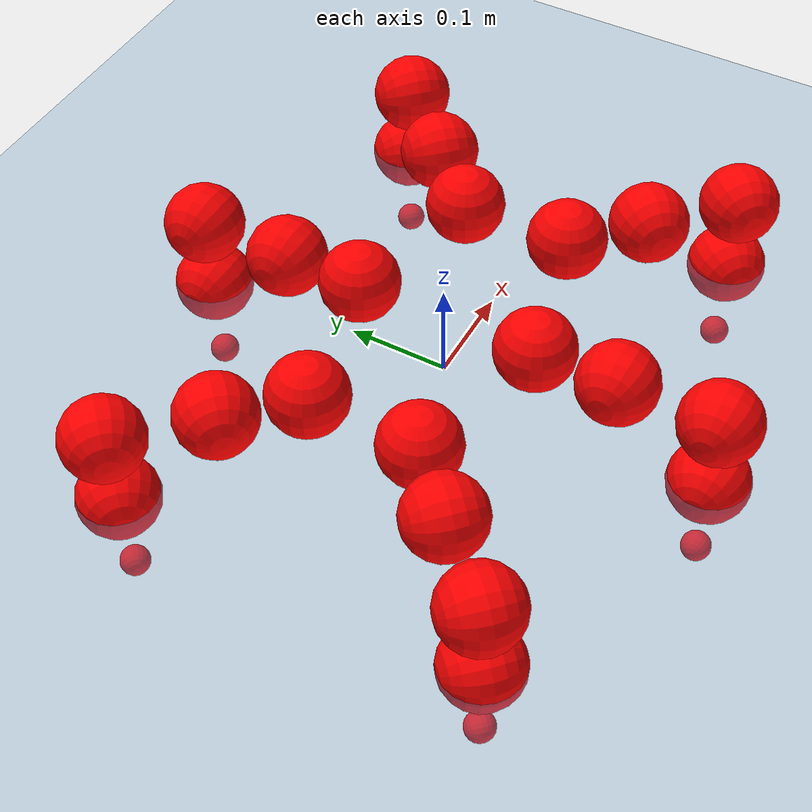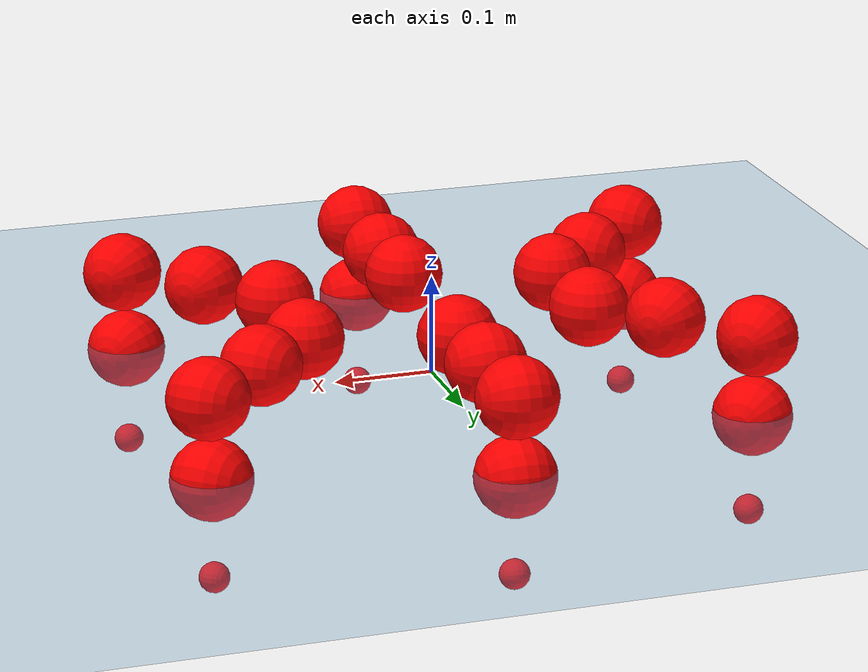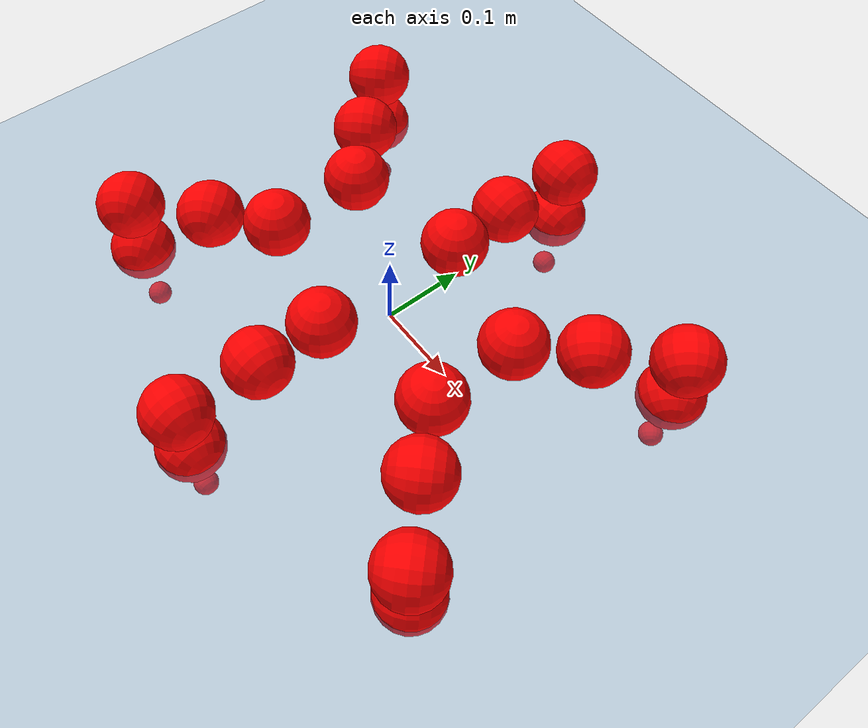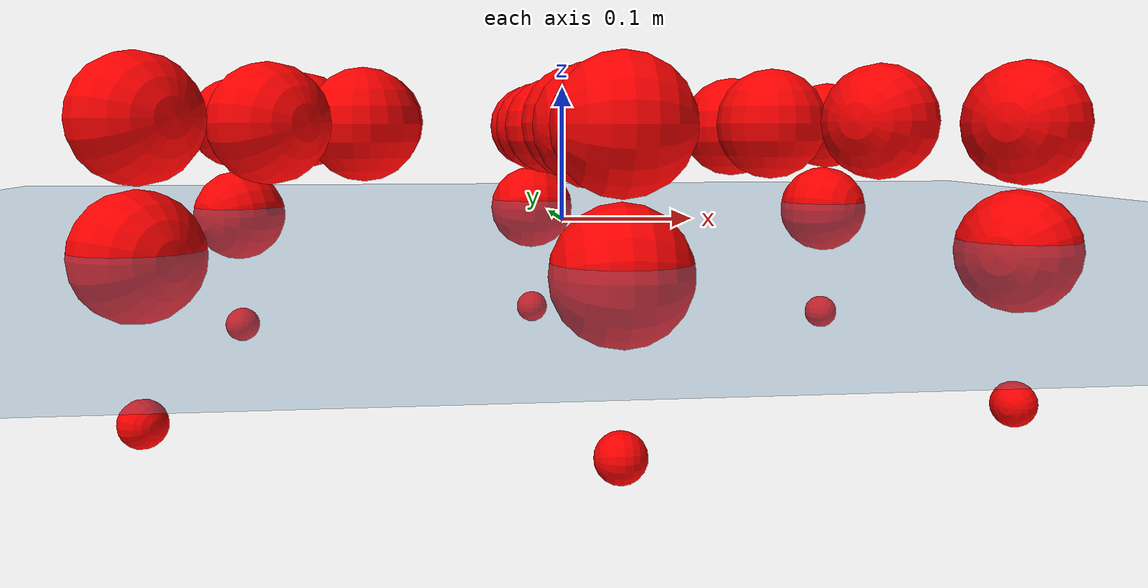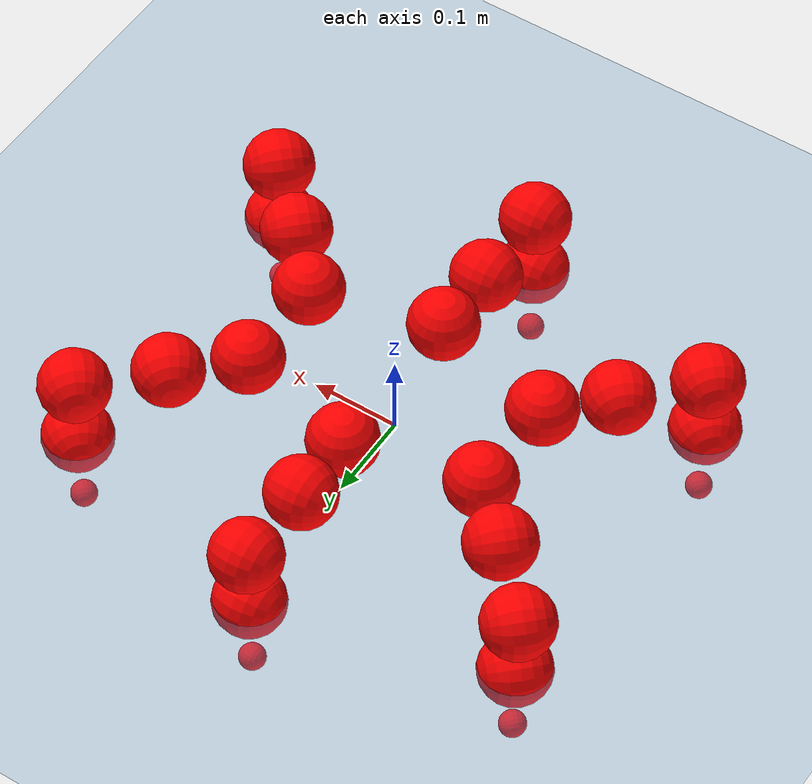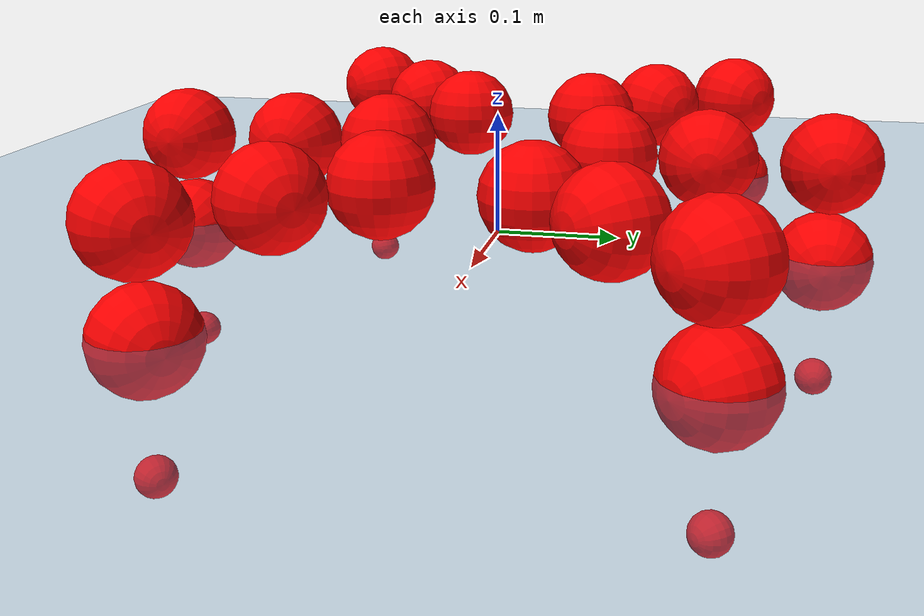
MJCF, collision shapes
<mujoco model="Golem">
  <compiler angle="radian" assetdir="assets" balanceinertia="true" inertiafromgeom="false"/>

  <option timestep="0.005" density="1.2" viscosity="2e-05"/>

  <size nkey="1"/>

  <visual>
    <quality shadowsize="8192"/>
    <map shadowclip="0.5"/>
  </visual>

  <default>
    <default class="/">
      <joint armature="0.01" damping="0.01" frictionloss="0.01"/>
      <geom contype="0" conaffinity="0" group="1" solref="-1000 -80"/>
      <site size="0.01 0.005 0.005" group="5"/>
      <general forcelimited="true" biastype="affine" gainprm="25" biasprm="0 -25 -0.5"/>
      <default class="visual">
        <geom type="mesh" group="2"/>
      </default>
      <default class="collision">
        <geom group="3"/>
      </default>
      <default class="foot">
        <geom size="0.01 0 0" condim="6" group="4" priority="1" solimp="0.015 1 0.01"/>
      </default>
      <default class="reward_collision_sphere">
        <geom group="5" rgba="1 0 0 1"/>
      </default>
    </default>
  </default>

  <asset>
    <texture type="skybox" colorspace="auto" name="//unnamed_texture_0" builtin="gradient" rgb1="0.95 0.95 0.95" rgb2="0.95 0.95 0.95" width="100" height="600"/>
    <texture type="2d" colorspace="auto" name="texplane" builtin="checker" rgb1="0.345 0.575 0.748" rgb2="0.345 0.575 0.748" markrgb="1 1 1" width="512" height="512"/>
    <material name="MatPlane" class="/" texture="texplane" texuniform="true" texrepeat="2 2" specular="0.9"/>
    <mesh name="body" class="/" file="body.stl" scale="0.001 0.001 0.001"/>
    <mesh name="coxa" class="/" file="coxa.stl" scale="0.001 0.001 0.001"/>
    <mesh name="femur" class="/" file="femur.stl" scale="0.001 0.001 0.001"/>
    <mesh name="tibia" class="/" file="tibia.stl" scale="0.001 0.001 0.001"/>
    <mesh name="tarsus" class="/" file="tarsus.stl" scale="0.001 0.001 0.001"/>
  </asset>

  <worldbody>
    <geom name="floor" class="/" size="100 100 0.125" type="plane" group="0" material="MatPlane"/>
    <light name="toplight_shadow" class="/" pos="0 0 5" dir="0.0990148 0.0990148 -0.990148" type="directional" ambient="0.04 0.04 0.04" diffuse="0.55 0.55 0.55" specular="0.12 0.12 0.12"/>
    <light name="toplight_fill" class="/" pos="0 0 5" dir="0.0990148 0.0990148 -0.990148" type="directional" castshadow="false" ambient="0.04 0.04 0.04" diffuse="0.3 0.3 0.3" specular="0.08 0.08 0.08"/>
    <body name="trunk" pos="-2.25137e-05 0.000383907 -0.00283984" quat="0.999999 -0.000928813 -0.000777629 -0.000423679">
      <inertial pos="0.00256902 -0.00250151 -0.000458233" quat="0.999973 0.0059157 -0.00413381 -0.00117398" mass="3.38751" diaginertia="0.00642717 0.00564765 0.0196473"/>
      <joint name="//unnamed_joint_0" type="free"/>
      <geom name="//unnamed_geom_1" class="/" pos="0 0 0.0732619" quat="1 0 0 0" type="mesh" rgba="0.9 0.9 0.9 1" mesh="body"/>
      <site name="imu" class="/" pos="0.115556 0.0122872 0.120249" size="0.00989364"/>
      <camera name="track" class="/" pos="0 -1.80694 0" quat="0.707107 0.707107 0 0" mode="trackcom"/>
      <camera name="ego_camera" class="/" pos="0.119588 0 0.114472" quat="-0.5 -0.5 0.5 0.5"/>
      <body name="coxa_RR" pos="-0.16474 -0.0754048 0.0751302" quat="0.382963 0.000339453 1.99266e-05 -0.923763">
        <inertial pos="0.002685 0.00141915 -0.00247797" quat="0.999936 3.62224e-06 -0.0071996 -0.00877106" mass="0.197029" diaginertia="0.00642614 0.00610598 0.0195975"/>
        <joint name="coxa_joint_RR" class="/" pos="0 0 0" axis="-0.000253257 -0.00376476 -0.999993" stiffness="0.00279759" range="-3.09477 3.11285" armature="0.00960775" damping="0" frictionloss="0.0108154"/>
        <geom name="//unnamed_geom_2" class="/" type="mesh" rgba="0.2 0.2 0.2 1" mesh="coxa"/>
        <geom name="//unnamed_geom_3" class="reward_collision_sphere" size="0.0395745" pos="-0.0275972 0 0"/>
        <body name="femur_RR" pos="0.0518788 -0.00180611 0.000774493" quat="0.499612 -0.499713 0.500009 0.500666">
          <inertial pos="0.000341612 0.00132103 0.00267154" quat="0.999899 0.000342967 0.00048885 0.0141646" mass="0.185896" diaginertia="0.00662978 0.00567576 0.0191892"/>
          <joint name="femur_joint_RR" class="/" pos="0 0 0" axis="-0.0042647 0.00092425 -0.99999" range="-3.11086 3.10961" armature="0.0110373" damping="0.011728" frictionloss="0.00995687"/>
          <geom name="//unnamed_geom_4" class="/" type="mesh" rgba="0.9 0.9 0.9 1" mesh="femur"/>
          <geom name="//unnamed_geom_5" class="reward_collision_sphere" size="0.0395745"/>
          <body name="tibia_RR" pos="-0.00279962 -0.0954718 0.00106419" quat="-0.000204412 1 9.46363e-05 6.4599e-05">
            <inertial pos="-0.000544301 0.00183259 -0.00025678" quat="1 9.18025e-05 -0.000483058 -2.18735e-05" mass="0.188315" diaginertia="0.00642751 0.00581714 0.0192207"/>
            <joint name="tibia_joint_RR" class="/" pos="0 0 0" axis="0.00882519 0.00583819 0.999944" range="-3.10439 3.14027" armature="0.00840783" damping="0.010857" frictionloss="0.0102821"/>
            <geom name="//unnamed_geom_6" class="/" type="mesh" rgba="0.2 0.2 0.2 1" mesh="tibia"/>
            <geom name="//unnamed_geom_7" class="reward_collision_sphere" size="0.0395745"/>
            <body name="tarsus_RR" pos="0.080279 0.0027289 -0.00140456" quat="0.999999 0.000608253 -0.00109045 0.000553615">
              <inertial pos="0.0579725 0.000669902 0.00284954" quat="0.499161 0.505741 0.489818 0.505116" mass="0.18883" diaginertia="0.00638322 0.00578248 0.0193209"/>
              <joint name="tarsus_joint_RR" class="/" pos="0 0 0" axis="0.00918591 -0.0117287 0.999889" range="-3.19422 3.15961" armature="0.00918933" damping="0.0173292" frictionloss="0.00950571"/>
              <geom name="//unnamed_geom_8" class="/" type="mesh" rgba="0.9 0.9 0.9 1" mesh="tarsus"/>
              <geom name="foot_1" class="foot" size="0.00900691" pos="0.103029 0 0" quat="0 -0.707107 0 0.707107"/>
              <geom name="//unnamed_geom_10" class="reward_collision_sphere" size="0.0395745"/>
              <geom name="//unnamed_geom_11" class="reward_collision_sphere" size="0.0148405" pos="0.0988898 0 0"/>
              <site name="foot_1" class="foot" pos="0.103029 0 0" quat="0 -0.707107 0 0.707107" size="0.00989364"/>
            </body>
          </body>
        </body>
      </body>
      <body name="coxa_RM" pos="0.000851176 -0.121433 0.0759972" quat="0.707065 1.45844e-05 9.72824e-06 -0.707149">
        <inertial pos="-0.000784184 -5.75064e-05 -0.00231227" quat="0.999983 0.00522457 -0.00258456 -0.00100867" mass="0.19003" diaginertia="0.00659684 0.0062312 0.0205968"/>
        <joint name="coxa_joint_RM" class="/" pos="0 0 0" axis="-0.00332367 -0.00441798 -0.999985" range="-3.13784 3.08473" armature="0.00942798" damping="0.0142508" frictionloss="0.0112977"/>
        <geom name="//unnamed_geom_12" class="/" type="mesh" rgba="0.2 0.2 0.2 1" mesh="coxa"/>
        <geom name="//unnamed_geom_13" class="reward_collision_sphere" size="0.0395745" pos="-0.0275972 0 0"/>
        <body name="femur_RM" pos="0.0539919 -0.000252574 -0.0017235" quat="0.500401 -0.499923 0.499948 0.499728">
          <inertial pos="-6.46644e-05 0.00270236 0.00039893" quat="0.999998 -0.00105817 -5.83622e-05 -0.00177803" mass="0.201392" diaginertia="0.00643023 0.00609052 0.0191409"/>
          <joint name="femur_joint_RM" class="/" pos="0 0 0" axis="0.000106168 0.000412439 -1" range="-3.08907 3.19051" armature="0.0113174" damping="0.0203192" frictionloss="0.0109533"/>
          <geom name="//unnamed_geom_14" class="/" type="mesh" rgba="0.9 0.9 0.9 1" mesh="femur"/>
          <geom name="//unnamed_geom_15" class="reward_collision_sphere" size="0.0395745"/>
          <body name="tibia_RM" pos="9.51556e-06 -0.0973604 -9.30022e-05" quat="-4.5178e-05 1 -0.000247797 -0.000506548">
            <inertial pos="-0.00108698 0.000103817 0.00271421" quat="1 2.78691e-05 -2.53477e-05 -1.32292e-05" mass="0.19779" diaginertia="0.0066238 0.00597081 0.0189855"/>
            <joint name="tibia_joint_RM" class="/" pos="0 0 0" axis="0.00416911 -0.00669594 0.999969" range="-3.09717 3.19587" armature="0.00907688" damping="0.0195287" frictionloss="0.010801"/>
            <geom name="//unnamed_geom_16" class="/" type="mesh" rgba="0.2 0.2 0.2 1" mesh="tibia"/>
            <geom name="//unnamed_geom_17" class="reward_collision_sphere" size="0.0395745"/>
            <body name="tarsus_RM" pos="0.0803067 -0.000709254 0.000750504" quat="0.999999 0.000555237 -0.000670006 -0.00112544">
              <inertial pos="0.0554004 -0.00134781 0.000395321" quat="0.499367 0.500119 0.50032 0.500194" mass="0.204938" diaginertia="0.00682514 0.00615964 0.020049"/>
              <joint name="tarsus_joint_RM" class="/" pos="0 0 0" axis="-0.00975721 -0.000129975 0.999952" range="-3.10267 3.13619" armature="0.00869919" damping="0.0159544" frictionloss="0.0101089"/>
              <geom name="//unnamed_geom_18" class="/" type="mesh" rgba="0.9 0.9 0.9 1" mesh="tarsus"/>
              <geom name="foot_2" class="foot" size="0.00883546" pos="0.103029 0 0" quat="0 -0.707107 0 0.707107"/>
              <geom name="//unnamed_geom_20" class="reward_collision_sphere" size="0.0395745"/>
              <geom name="//unnamed_geom_21" class="reward_collision_sphere" size="0.0148405" pos="0.0988898 0 0"/>
              <site name="foot_2" class="foot" pos="0.103029 0 0" quat="0 -0.707107 0 0.707107" size="0.00989364"/>
            </body>
          </body>
        </body>
      </body>
      <body name="coxa_RF" pos="0.165537 -0.0759278 0.0751108" quat="0.923907 -0.000711627 0.000467326 -0.382615">
        <inertial pos="-0.0016495 -0.00116935 -0.00253776" quat="0.9999 -0.000333788 -0.0107095 0.00925987" mass="0.191904" diaginertia="0.00659338 0.00600506 0.019947"/>
        <joint name="coxa_joint_RF" class="/" pos="0 0 0" axis="0.000362704 -0.00108163 -0.999999" range="-3.161 3.08152" armature="0.0100395" damping="0.0138498" frictionloss="0.0109179"/>
        <geom name="//unnamed_geom_22" class="/" type="mesh" rgba="0.2 0.2 0.2 1" mesh="coxa"/>
        <geom name="//unnamed_geom_23" class="reward_collision_sphere" size="0.0395745" pos="-0.0275972 0 0"/>
        <body name="femur_RF" pos="0.0558676 -0.00213267 0.00134428" quat="0.500615 -0.50079 0.499309 0.499284">
          <inertial pos="-0.000492927 -0.000311648 -0.000621907" quat="0.999908 -0.0107886 -0.00740419 -0.00351449" mass="0.193233" diaginertia="0.00634468 0.00586885 0.0189268"/>
          <joint name="femur_joint_RF" class="/" pos="0 0 0" axis="0.00535691 -0.00777385 -0.999955" stiffness="0.000609509" range="-3.09173 3.14597" armature="0.0094269" damping="0.00893544" frictionloss="0.00947053"/>
          <geom name="//unnamed_geom_24" class="/" type="mesh" rgba="0.9 0.9 0.9 1" mesh="femur"/>
          <geom name="//unnamed_geom_25" class="reward_collision_sphere" size="0.0395745"/>
          <body name="tibia_RF" pos="0.00127086 -0.095789 0.00157632" quat="0.000857991 1 1.20701e-05 0.000466734">
            <inertial pos="0.000321241 -0.00187787 -0.00257682" quat="0.999943 0.00378611 0.00431653 0.00903253" mass="0.19707" diaginertia="0.00637154 0.00594195 0.0197769"/>
            <joint name="tibia_joint_RF" class="/" pos="0 0 0" axis="0.0090833 -0.000779775 0.999958" stiffness="0.01544" range="-3.19085 3.12403" armature="0.00945574" damping="0.0280413" frictionloss="0.00850573"/>
            <geom name="//unnamed_geom_26" class="/" type="mesh" rgba="0.2 0.2 0.2 1" mesh="tibia"/>
            <geom name="//unnamed_geom_27" class="reward_collision_sphere" size="0.0395745"/>
            <body name="tarsus_RF" pos="0.0817157 -0.00274359 -0.000700542" quat="1 4.50857e-05 1.45028e-06 -7.56143e-07">
              <inertial pos="0.0564573 -0.000114456 0.00100065" quat="0.500114 0.492945 0.501935 0.504928" mass="0.185427" diaginertia="0.00619029 0.00565409 0.0189204"/>
              <joint name="tarsus_joint_RF" class="/" pos="0 0 0" axis="-0.000135318 -0.00693794 0.999976" stiffness="0.00435183" range="-3.12804 3.13413" armature="0.00932868" damping="0.00369365" frictionloss="0.011257"/>
              <geom name="//unnamed_geom_28" class="/" type="mesh" rgba="0.9 0.9 0.9 1" mesh="tarsus"/>
              <geom name="foot_3" class="foot" size="0.010584" pos="0.103029 0 0" quat="0 -0.707107 0 0.707107"/>
              <geom name="//unnamed_geom_30" class="reward_collision_sphere" size="0.0395745"/>
              <geom name="//unnamed_geom_31" class="reward_collision_sphere" size="0.0148405" pos="0.0988898 0 0"/>
              <site name="foot_3" class="foot" pos="0.103029 0 0" quat="0 -0.707107 0 0.707107" size="0.00989364"/>
            </body>
          </body>
        </body>
      </body>
      <body name="coxa_LR" pos="-0.163147 0.0772091 0.0768927" quat="0.382768 -0.000784389 0.000965776 0.923844">
        <inertial pos="-0.00244455 0.00233069 -0.00207963" quat="1 -0.000243599 0.000166622 -0.000232951" mass="0.1958" diaginertia="0.00646621 0.00579865 0.0195937"/>
        <joint name="coxa_joint_LR" class="/" pos="0 0 0" axis="-0.0156842 0.00258253 -0.999874" stiffness="0.0146061" range="-3.18712 3.17967" armature="0.0096049" damping="0.0164788" frictionloss="0.0112725"/>
        <geom name="//unnamed_geom_32" class="/" type="mesh" rgba="0.2 0.2 0.2 1" mesh="coxa"/>
        <geom name="//unnamed_geom_33" class="reward_collision_sphere" size="0.0395745" pos="-0.0275972 0 0"/>
        <body name="femur_LR" pos="0.0540978 0.00196586 0.00206426" quat="0.499922 -0.49969 0.500758 0.499629">
          <inertial pos="-0.00114372 0.00272173 0.00147235" quat="0.999967 0.00016237 -0.00589623 0.00564753" mass="0.186524" diaginertia="0.0067647 0.00587939 0.0188286"/>
          <joint name="femur_joint_LR" class="/" pos="0 0 0" axis="0.00316159 0.00100762 0.999994" range="-3.19034 3.17879" armature="0.0102912" damping="0.00782685" frictionloss="0.00976492"/>
          <geom name="//unnamed_geom_34" class="/" type="mesh" rgba="0.9 0.9 0.9 1" mesh="femur"/>
          <geom name="//unnamed_geom_35" class="reward_collision_sphere" size="0.0395745"/>
          <body name="tibia_LR" pos="0.00125299 -0.0981816 -0.00321717" quat="-0.000485926 1 0.00065411 -0.000326135">
            <inertial pos="-0.00262254 0.00172049 0.00276297" quat="0.999901 0.00153005 0.00162347 0.0139106" mass="0.199811" diaginertia="0.00662221 0.00623285 0.0192207"/>
            <joint name="tibia_joint_LR" class="/" pos="0 0 0" axis="-0.00699331 0.000626537 -0.999975" range="-3.10785 3.19428" armature="0.00850327" damping="0" frictionloss="0.00994298"/>
            <geom name="//unnamed_geom_36" class="/" type="mesh" rgba="0.2 0.2 0.2 1" mesh="tibia"/>
            <geom name="//unnamed_geom_37" class="reward_collision_sphere" size="0.0395745"/>
            <body name="tarsus_LR" pos="0.0818463 -0.00135517 0.000696081" quat="1 2.44022e-06 2.01085e-05 1.11012e-05">
              <inertial pos="0.0546851 -0.00214423 -6.53153e-05" quat="0.499687 0.500385 0.500189 0.499738" mass="0.185232" diaginertia="0.00646936 0.00596205 0.0199159"/>
              <joint name="tarsus_joint_LR" class="/" pos="0 0 0" axis="7.70633e-05 0.000359401 -1" stiffness="0.00675234" range="-3.14592 3.19599" armature="0.00974581" damping="0.00551499" frictionloss="0.0085083"/>
              <geom name="//unnamed_geom_38" class="/" type="mesh" rgba="0.9 0.9 0.9 1" mesh="tarsus"/>
              <geom name="foot_4" class="foot" size="0.0109937" pos="0.103029 0 0" quat="0.707107 0 -0.707107 0"/>
              <geom name="//unnamed_geom_40" class="reward_collision_sphere" size="0.0395745"/>
              <geom name="//unnamed_geom_41" class="reward_collision_sphere" size="0.0148405" pos="0.0988898 0 0"/>
              <site name="foot_4" class="foot" pos="0.103029 0 0" quat="0.707107 0 -0.707107 0" size="0.00989364"/>
            </body>
          </body>
        </body>
      </body>
      <body name="coxa_LM" pos="0.00261535 0.118429 0.073906" quat="0.707309 0.000129396 -1.96753e-05 0.706905">
        <inertial pos="0.000104847 -0.000480017 -0.00162888" quat="1 0.000192324 0.000612453 0.000383838" mass="0.190995" diaginertia="0.0068732 0.00607207 0.0198106"/>
        <joint name="coxa_joint_LM" class="/" pos="0 0 0" axis="-0.0138069 -0.00277712 -0.999901" range="-3.13642 3.15502" armature="0.0107259" damping="0.00586718" frictionloss="0.0098131"/>
        <geom name="//unnamed_geom_42" class="/" type="mesh" rgba="0.2 0.2 0.2 1" mesh="coxa"/>
        <geom name="//unnamed_geom_43" class="reward_collision_sphere" size="0.0395745" pos="-0.0275972 0 0"/>
        <body name="femur_LM" pos="0.0514097 0.00267252 -0.000601575" quat="0.500561 -0.499662 0.499559 0.500216">
          <inertial pos="-0.00268312 0.000504752 -0.00104594" quat="0.999907 0.00634001 -0.0119161 0.00218436" mass="0.187162" diaginertia="0.00639772 0.00577964 0.0189052"/>
          <joint name="femur_joint_LM" class="/" pos="0 0 0" axis="-0.00517632 0.0101308 0.999935" stiffness="0.00650339" range="-3.12645 3.11453" armature="0.00862275" damping="3.9707e-05" frictionloss="0.00868186"/>
          <geom name="//unnamed_geom_44" class="/" type="mesh" rgba="0.9 0.9 0.9 1" mesh="femur"/>
          <geom name="//unnamed_geom_45" class="reward_collision_sphere" size="0.0395745"/>
          <body name="tibia_LM" pos="-0.000456403 -0.0951077 -0.000630398" quat="-0.00128705 0.999999 -0.000295163 -0.000343568">
            <inertial pos="0.00251723 0.000147354 -0.000306878" quat="0.999999 0.00083394 -0.0011853 0.000710736" mass="0.198405" diaginertia="0.00653159 0.00592227 0.0193436"/>
            <joint name="tibia_joint_LM" class="/" pos="0 0 0" axis="-0.00256969 -0.0127342 -0.999916" stiffness="0.0005633" range="-3.08942 3.08547" armature="0.0100769" damping="0.00676771" frictionloss="0.0111647"/>
            <geom name="//unnamed_geom_46" class="/" type="mesh" rgba="0.2 0.2 0.2 1" mesh="tibia"/>
            <geom name="//unnamed_geom_47" class="reward_collision_sphere" size="0.0395745"/>
            <body name="tarsus_LM" pos="0.0793101 -0.00177526 0.000280963" quat="1 -8.68891e-05 -1.1589e-05 0.000182582">
              <inertial pos="0.0526374 -0.00203687 0.000233918" quat="0.506779 0.493798 0.492948 0.506302" mass="0.192294" diaginertia="0.00645104 0.00591365 0.0190258"/>
              <joint name="tarsus_joint_LM" class="/" pos="0 0 0" axis="0.0144882 0.000699496 -0.999895" stiffness="0.00847517" range="-3.13655 3.14216" armature="0.00980109" damping="0.0149096" frictionloss="0.0105308"/>
              <geom name="//unnamed_geom_48" class="/" type="mesh" rgba="0.9 0.9 0.9 1" mesh="tarsus"/>
              <geom name="foot_5" class="foot" size="0.0110307" pos="0.103029 0 0" quat="0.707107 0 -0.707107 0"/>
              <geom name="//unnamed_geom_50" class="reward_collision_sphere" size="0.0395745"/>
              <geom name="//unnamed_geom_51" class="reward_collision_sphere" size="0.0148405" pos="0.0988898 0 0"/>
              <site name="foot_5" class="foot" pos="0.103029 0 0" quat="0.707107 0 -0.707107 0" size="0.00989364"/>
            </body>
          </body>
        </body>
      </body>
      <body name="coxa_LF" pos="0.16573 0.0739202 0.0729625" quat="0.923778 0.000404366 0.000466929 0.382929">
        <inertial pos="-0.0016763 -0.00081866 -0.00274133" quat="0.999982 0.00385694 -0.00460438 0.000341544" mass="0.187778" diaginertia="0.00637316 0.00574863 0.0196518"/>
        <joint name="coxa_joint_LF" class="/" pos="0 0 0" axis="-0.00516083 -0.00383332 -0.999979" range="-3.19484 3.14142" armature="0.0108517" damping="0.0162137" frictionloss="0.00854953"/>
        <geom name="//unnamed_geom_52" class="/" type="mesh" rgba="0.2 0.2 0.2 1" mesh="coxa"/>
        <geom name="//unnamed_geom_53" class="reward_collision_sphere" size="0.0395745" pos="-0.0275972 0 0"/>
        <body name="femur_LF" pos="0.0567608 0.00180745 0.00107254" quat="0.500444 -0.499607 0.499161 0.500785">
          <inertial pos="9.45691e-05 -0.00298159 0.00116039" quat="0.999999 -0.000998734 -0.00016316 -0.000489578" mass="0.191431" diaginertia="0.00627869 0.00586009 0.0190683"/>
          <joint name="femur_joint_LF" class="/" pos="0 0 0" axis="-0.00676369 0.00910666 0.999936" range="-3.18998 3.19219" armature="0.00990511" damping="0" frictionloss="0.010016"/>
          <geom name="//unnamed_geom_54" class="/" type="mesh" rgba="0.9 0.9 0.9 1" mesh="femur"/>
          <geom name="//unnamed_geom_55" class="reward_collision_sphere" size="0.0395745"/>
          <body name="tibia_LF" pos="-2.39008e-05 -0.0982144 0.00116395" quat="0.00111911 0.999999 -6.83639e-05 0.000752909">
            <inertial pos="0.00271122 0.00218814 -0.0026321" quat="0.999986 0.00324564 -0.0039115 -0.0011621" mass="0.198949" diaginertia="0.00630417 0.00602185 0.0188158"/>
            <joint name="tibia_joint_LF" class="/" pos="0 0 0" axis="-0.0127427 0.000781177 -0.999919" stiffness="0.00597206" range="-3.16116 3.08643" armature="0.00893839" damping="0.0119776" frictionloss="0.0103853"/>
            <geom name="//unnamed_geom_56" class="/" type="mesh" rgba="0.2 0.2 0.2 1" mesh="tibia"/>
            <geom name="//unnamed_geom_57" class="reward_collision_sphere" size="0.0395745"/>
            <body name="tarsus_LF" pos="0.0787189 0.00209842 -0.00274837" quat="1 -8.91107e-05 -2.28707e-05 -0.000133962">
              <inertial pos="0.0549751 0.00127229 -0.000907696" quat="0.502131 0.498299 0.501205 0.498354" mass="0.187975" diaginertia="0.00648507 0.00599279 0.019838"/>
              <joint name="tarsus_joint_LF" class="/" pos="0 0 0" axis="-0.000900971 0.000288872 -1" stiffness="0.0267818" range="-3.08961 3.08339" armature="0.00975897" damping="0.0299093" frictionloss="0.00868447"/>
              <geom name="//unnamed_geom_58" class="/" type="mesh" rgba="0.9 0.9 0.9 1" mesh="tarsus"/>
              <geom name="foot_6" class="foot" size="0.0103531" pos="0.103029 0 0" quat="0.707107 0 -0.707107 0"/>
              <geom name="//unnamed_geom_60" class="reward_collision_sphere" size="0.0395745"/>
              <geom name="//unnamed_geom_61" class="reward_collision_sphere" size="0.0148405" pos="0.0988898 0 0"/>
              <site name="foot_6" class="foot" pos="0.103029 0 0" quat="0.707107 0 -0.707107 0" size="0.00989364"/>
            </body>
          </body>
        </body>
      </body>
    </body>
  </worldbody>

  <contact>
    <pair class="/" geom1="floor" geom2="foot_1" name="//unnamed_contact_0"/>
    <pair class="/" geom1="floor" geom2="foot_2" name="//unnamed_contact_1"/>
    <pair class="/" geom1="floor" geom2="foot_3" name="//unnamed_contact_2"/>
    <pair class="/" geom1="floor" geom2="foot_4" name="//unnamed_contact_3"/>
    <pair class="/" geom1="floor" geom2="foot_5" name="//unnamed_contact_4"/>
    <pair class="/" geom1="floor" geom2="foot_6" name="//unnamed_contact_5"/>
  </contact>

  <actuator>
    <general name="coxa_joint_RR" class="/" joint="coxa_joint_RR" forcerange="-7.30301 7.30301" gainprm="23.4186" biasprm="0 -23.4186 -0.537794"/>
    <general name="femur_joint_RR" class="/" joint="femur_joint_RR" forcerange="-7.47733 7.47733" gainprm="23.4186" biasprm="0 -23.4186 -0.537794"/>
    <general name="tibia_joint_RR" class="/" joint="tibia_joint_RR" forcerange="-7.08446 7.08446" gainprm="23.4186" biasprm="0 -23.4186 -0.537794"/>
    <general name="tarsus_joint_RR" class="/" joint="tarsus_joint_RR" forcerange="-7.91952 7.91952" gainprm="23.4186" biasprm="0 -23.4186 -0.537794"/>
    <general name="coxa_joint_RM" class="/" joint="coxa_joint_RM" forcerange="-6.67582 6.67582" gainprm="23.4186" biasprm="0 -23.4186 -0.537794"/>
    <general name="femur_joint_RM" class="/" joint="femur_joint_RM" forcerange="-7.90967 7.90967" gainprm="23.4186" biasprm="0 -23.4186 -0.537794"/>
    <general name="tibia_joint_RM" class="/" joint="tibia_joint_RM" forcerange="-7.54428 7.54428" gainprm="23.4186" biasprm="0 -23.4186 -0.537794"/>
    <general name="tarsus_joint_RM" class="/" joint="tarsus_joint_RM" forcerange="-7.82789 7.82789" gainprm="23.4186" biasprm="0 -23.4186 -0.537794"/>
    <general name="coxa_joint_RF" class="/" joint="coxa_joint_RF" forcerange="-6.52373 6.52373" gainprm="23.4186" biasprm="0 -23.4186 -0.537794"/>
    <general name="femur_joint_RF" class="/" joint="femur_joint_RF" forcerange="-7.03916 7.03916" gainprm="23.4186" biasprm="0 -23.4186 -0.537794"/>
    <general name="tibia_joint_RF" class="/" joint="tibia_joint_RF" forcerange="-7.68972 7.68972" gainprm="23.4186" biasprm="0 -23.4186 -0.537794"/>
    <general name="tarsus_joint_RF" class="/" joint="tarsus_joint_RF" forcerange="-7.10906 7.10906" gainprm="23.4186" biasprm="0 -23.4186 -0.537794"/>
    <general name="coxa_joint_LR" class="/" joint="coxa_joint_LR" forcerange="-7.34469 7.34469" gainprm="23.4186" biasprm="0 -23.4186 -0.537794"/>
    <general name="femur_joint_LR" class="/" joint="femur_joint_LR" forcerange="-7.28386 7.28386" gainprm="23.4186" biasprm="0 -23.4186 -0.537794"/>
    <general name="tibia_joint_LR" class="/" joint="tibia_joint_LR" forcerange="-7.49533 7.49533" gainprm="23.4186" biasprm="0 -23.4186 -0.537794"/>
    <general name="tarsus_joint_LR" class="/" joint="tarsus_joint_LR" forcerange="-6.99277 6.99277" gainprm="23.4186" biasprm="0 -23.4186 -0.537794"/>
    <general name="coxa_joint_LM" class="/" joint="coxa_joint_LM" forcerange="-7.15919 7.15919" gainprm="23.4186" biasprm="0 -23.4186 -0.537794"/>
    <general name="femur_joint_LM" class="/" joint="femur_joint_LM" forcerange="-7.24666 7.24666" gainprm="23.4186" biasprm="0 -23.4186 -0.537794"/>
    <general name="tibia_joint_LM" class="/" joint="tibia_joint_LM" forcerange="-7.27425 7.27425" gainprm="23.4186" biasprm="0 -23.4186 -0.537794"/>
    <general name="tarsus_joint_LM" class="/" joint="tarsus_joint_LM" forcerange="-7.79455 7.79455" gainprm="23.4186" biasprm="0 -23.4186 -0.537794"/>
    <general name="coxa_joint_LF" class="/" joint="coxa_joint_LF" forcerange="-6.49995 6.49995" gainprm="23.4186" biasprm="0 -23.4186 -0.537794"/>
    <general name="femur_joint_LF" class="/" joint="femur_joint_LF" forcerange="-7.16539 7.16539" gainprm="23.4186" biasprm="0 -23.4186 -0.537794"/>
    <general name="tibia_joint_LF" class="/" joint="tibia_joint_LF" forcerange="-7.36696 7.36696" gainprm="23.4186" biasprm="0 -23.4186 -0.537794"/>
    <general name="tarsus_joint_LF" class="/" joint="tarsus_joint_LF" forcerange="-7.30068 7.30068" gainprm="23.4186" biasprm="0 -23.4186 -0.537794"/>
  </actuator>

  <sensor>
    <gyro site="imu" name="imu_angular_velocity"/>
    <velocimeter site="imu" name="imu_linear_velocity"/>
    <framelinvel objtype="site" objname="foot_1" name="foot_1_global_linear_velocity"/>
    <framelinvel objtype="site" objname="foot_2" name="foot_2_global_linear_velocity"/>
    <framelinvel objtype="site" objname="foot_3" name="foot_3_global_linear_velocity"/>
    <framelinvel objtype="site" objname="foot_4" name="foot_4_global_linear_velocity"/>
    <framelinvel objtype="site" objname="foot_5" name="foot_5_global_linear_velocity"/>
    <framelinvel objtype="site" objname="foot_6" name="foot_6_global_linear_velocity"/>
  </sensor>

  <keyframe>
    <key name="home" qpos="0 0 0.1457 1 0 0 0 0 0 0 0 0 0 0 0 0 0 0 0 0 0 0 0 0 0 0 0 0 0 0 0"/>
  </keyframe>
</mujoco>
